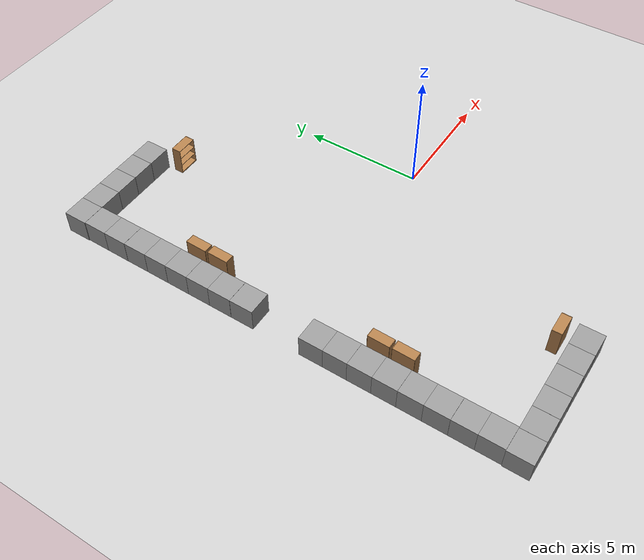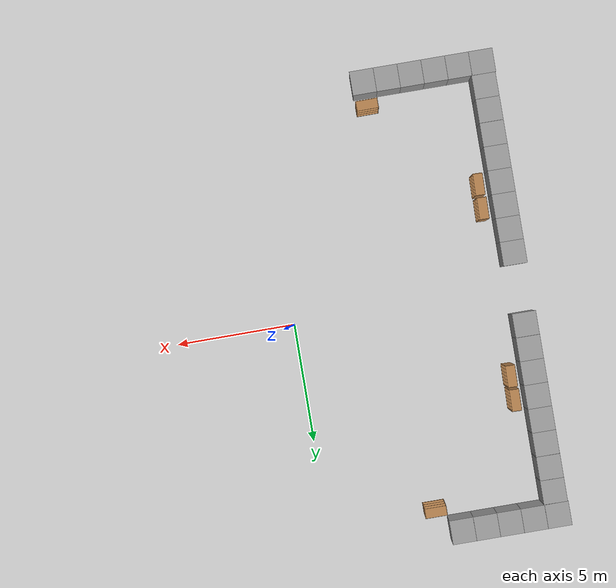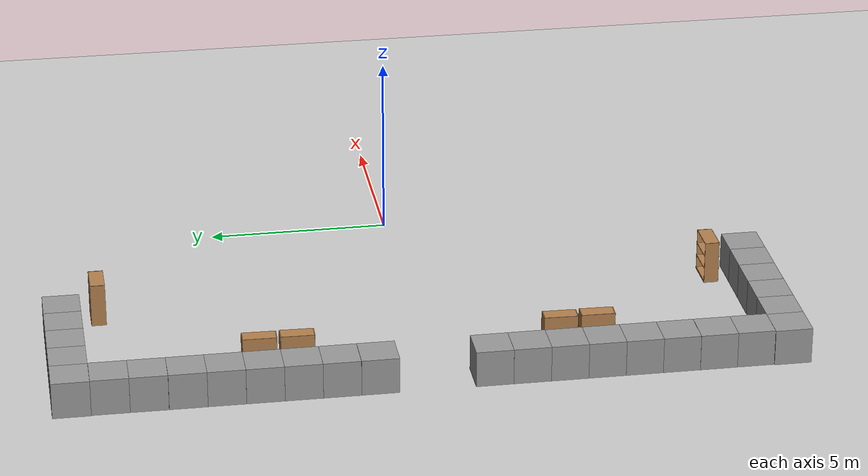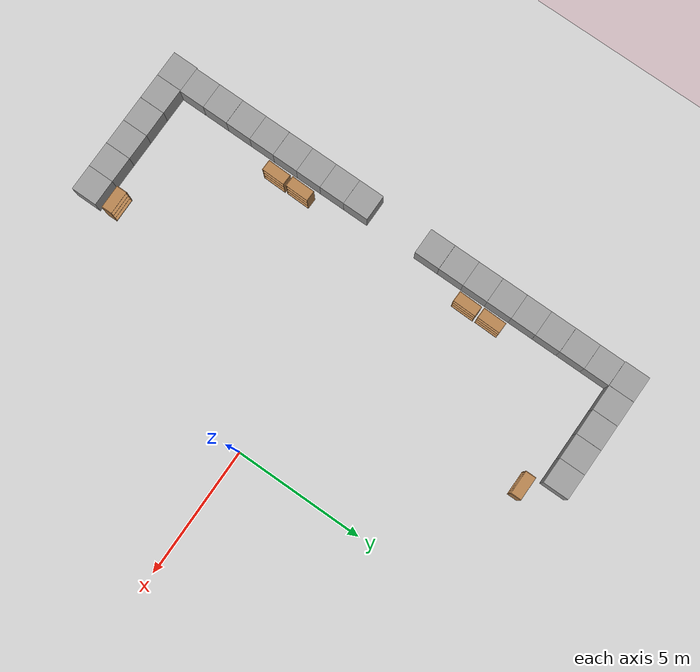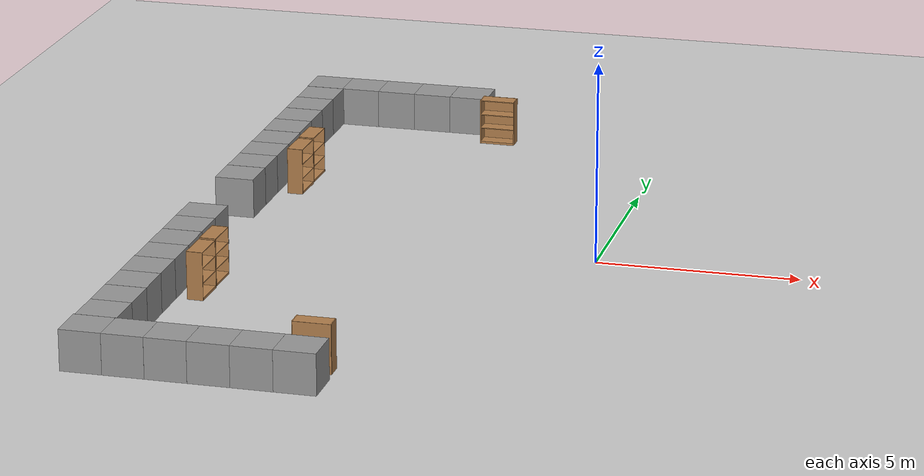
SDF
<sdf version="1.6">
 <world name="default">
  <model name="ground_plane">
   <static>1</static>
   <link name="link">
    <collision name="collision">
     <geometry><plane><normal>0 0 1</normal><size>100 100</size></plane></geometry>
     <surface><friction><ode><mu>100</mu><mu2>50</mu2></ode></friction></surface>
    </collision>
    <visual name="visual">
     <cast_shadows>0</cast_shadows>
     <geometry><plane><normal>0 0 1</normal><size>100 100</size></plane></geometry>
     <material>
      <script><uri>file://media/materials/scripts/gazebo.material</uri><name>Gazebo/Grey</name></script>
     </material>
    </visual>
   </link>
  </model>
  <model name="unit_box_2">
   <pose>-9.56901 -9.47844 0.499798 -0.000404 1e-06 0.000136</pose>
   <link name="link">
    <inertial>
     <mass>1</mass>
     <inertia>
      <ixx>0.166667</ixx>
      <ixy>0</ixy>
      <ixz>0</ixz>
      <iyy>0.166667</iyy>
      <iyz>0</iyz>
      <izz>0.166667</izz>
     </inertia>
    </inertial>
    <collision name="collision"><geometry><box><size>1 1 1</size></box></geometry></collision>
    <visual name="visual">
     <geometry><box><size>1 1 1</size></box></geometry>
     <material>
      <script><name>Gazebo/Grey</name><uri>file://media/materials/scripts/gazebo.material</uri></script>
     </material>
    </visual>
   </link>
  </model>
  <model name="unit_box_3">
   <pose>-9.55233 9.54711 0.5 0 -0 0.000678</pose>
   <link name="link">
    <inertial>
     <mass>1</mass>
     <inertia>
      <ixx>0.166667</ixx>
      <ixy>0</ixy>
      <ixz>0</ixz>
      <iyy>0.166667</iyy>
      <iyz>0</iyz>
      <izz>0.166667</izz>
     </inertia>
    </inertial>
    <collision name="collision"><geometry><box><size>1 1 1</size></box></geometry></collision>
    <visual name="visual">
     <geometry><box><size>1 1 1</size></box></geometry>
     <material>
      <script><name>Gazebo/Grey</name><uri>file://media/materials/scripts/gazebo.material</uri></script>
     </material>
    </visual>
   </link>
  </model>
  <model name="unit_box_28">
   <pose>-8.5686 -9.47816 0.499798 -0.000404 1e-06 0.00016</pose>
   <link name="link">
    <inertial>
     <mass>1</mass>
     <inertia>
      <ixx>0.166667</ixx>
      <ixy>0</ixy>
      <ixz>0</ixz>
      <iyy>0.166667</iyy>
      <iyz>0</iyz>
      <izz>0.166667</izz>
     </inertia>
    </inertial>
    <collision name="collision"><geometry><box><size>1 1 1</size></box></geometry></collision>
    <visual name="visual">
     <geometry><box><size>1 1 1</size></box></geometry>
     <material>
      <script><name>Gazebo/Grey</name><uri>file://media/materials/scripts/gazebo.material</uri></script>
     </material>
    </visual>
   </link>
  </model>
  <model name="unit_box_29">
   <pose>-7.56783 -9.47849 0.499798 -0.000404 1e-06 -2.2e-05</pose>
   <link name="link">
    <inertial>
     <mass>1</mass>
     <inertia>
      <ixx>0.166667</ixx>
      <ixy>0</ixy>
      <ixz>0</ixz>
      <iyy>0.166667</iyy>
      <iyz>0</iyz>
      <izz>0.166667</izz>
     </inertia>
    </inertial>
    <collision name="collision"><geometry><box><size>1 1 1</size></box></geometry></collision>
    <visual name="visual">
     <geometry><box><size>1 1 1</size></box></geometry>
     <material>
      <script><name>Gazebo/Grey</name><uri>file://media/materials/scripts/gazebo.material</uri></script>
     </material>
    </visual>
   </link>
  </model>
  <model name="unit_box_30">
   <pose>-6.56772 -9.47755 0.499798 -0.000404 1e-06 -1.9e-05</pose>
   <link name="link">
    <inertial>
     <mass>1</mass>
     <inertia>
      <ixx>0.166667</ixx>
      <ixy>0</ixy>
      <ixz>0</ixz>
      <iyy>0.166667</iyy>
      <iyz>0</iyz>
      <izz>0.166667</izz>
     </inertia>
    </inertial>
    <collision name="collision"><geometry><box><size>1 1 1</size></box></geometry></collision>
    <visual name="visual">
     <geometry><box><size>1 1 1</size></box></geometry>
     <material>
      <script><name>Gazebo/Grey</name><uri>file://media/materials/scripts/gazebo.material</uri></script>
     </material>
    </visual>
   </link>
  </model>
  <model name="unit_box_31">
   <pose>-5.5675 -9.47895 0.499798 -0.000404 -0 -0.000171</pose>
   <link name="link">
    <inertial>
     <mass>1</mass>
     <inertia>
      <ixx>0.166667</ixx>
      <ixy>0</ixy>
      <ixz>0</ixz>
      <iyy>0.166667</iyy>
      <iyz>0</iyz>
      <izz>0.166667</izz>
     </inertia>
    </inertial>
    <collision name="collision"><geometry><box><size>1 1 1</size></box></geometry></collision>
    <visual name="visual">
     <geometry><box><size>1 1 1</size></box></geometry>
     <material>
      <script><name>Gazebo/Grey</name><uri>file://media/materials/scripts/gazebo.material</uri></script>
     </material>
    </visual>
   </link>
  </model>
  <model name="unit_box_32">
   <pose>-4.56729 -9.47932 0.499798 -0.000404 0 -0.000396</pose>
   <link name="link">
    <inertial>
     <mass>1</mass>
     <inertia>
      <ixx>0.166667</ixx>
      <ixy>0</ixy>
      <ixz>0</ixz>
      <iyy>0.166667</iyy>
      <iyz>0</iyz>
      <izz>0.166667</izz>
     </inertia>
    </inertial>
    <collision name="collision"><geometry><box><size>1 1 1</size></box></geometry></collision>
    <visual name="visual">
     <geometry><box><size>1 1 1</size></box></geometry>
     <material>
      <script><name>Gazebo/Grey</name><uri>file://media/materials/scripts/gazebo.material</uri></script>
     </material>
    </visual>
   </link>
  </model>
  <model name="unit_box_36_0">
   <pose>-9.53234 8.54458 0.49902 0 0 -0.003755</pose>
   <link name="link">
    <inertial>
     <mass>1</mass>
     <inertia>
      <ixx>0.166667</ixx>
      <ixy>0</ixy>
      <ixz>0</ixz>
      <iyy>0.166667</iyy>
      <iyz>0</iyz>
      <izz>0.166667</izz>
     </inertia>
    </inertial>
    <collision name="collision"><geometry><box><size>1 1 1</size></box></geometry></collision>
    <visual name="visual">
     <geometry><box><size>1 1 1</size></box></geometry>
     <material>
      <script><name>Gazebo/Grey</name><uri>file://media/materials/scripts/gazebo.material</uri></script>
     </material>
    </visual>
   </link>
  </model>
  <model name="unit_box_36_1">
   <pose>-9.53581 7.54426 0.499798 0.000404 -0 -0.003707</pose>
   <link name="link">
    <inertial>
     <mass>1</mass>
     <inertia>
      <ixx>0.166667</ixx>
      <ixy>0</ixy>
      <ixz>0</ixz>
      <iyy>0.166667</iyy>
      <iyz>0</iyz>
      <izz>0.166667</izz>
     </inertia>
    </inertial>
    <collision name="collision"><geometry><box><size>1 1 1</size></box></geometry></collision>
    <visual name="visual">
     <geometry><box><size>1 1 1</size></box></geometry>
     <material>
      <script><name>Gazebo/Grey</name><uri>file://media/materials/scripts/gazebo.material</uri></script>
     </material>
    </visual>
   </link>
  </model>
  <model name="unit_box_36_2">
   <pose>-9.53516 6.54264 0.49912 0 0 -0.001231</pose>
   <link name="link">
    <inertial>
     <mass>1</mass>
     <inertia>
      <ixx>0.166667</ixx>
      <ixy>0</ixy>
      <ixz>0</ixz>
      <iyy>0.166667</iyy>
      <iyz>0</iyz>
      <izz>0.166667</izz>
     </inertia>
    </inertial>
    <collision name="collision"><geometry><box><size>1 1 1</size></box></geometry></collision>
    <visual name="visual">
     <geometry><box><size>1 1 1</size></box></geometry>
     <material>
      <script><name>Gazebo/Grey</name><uri>file://media/materials/scripts/gazebo.material</uri></script>
     </material>
    </visual>
   </link>
  </model>
  <model name="unit_box_36_3">
   <pose>-9.53613 5.54258 0.5 0 0 -0.001269</pose>
   <link name="link">
    <inertial>
     <mass>1</mass>
     <inertia>
      <ixx>0.166667</ixx>
      <ixy>0</ixy>
      <ixz>0</ixz>
      <iyy>0.166667</iyy>
      <iyz>0</iyz>
      <izz>0.166667</izz>
     </inertia>
    </inertial>
    <collision name="collision"><geometry><box><size>1 1 1</size></box></geometry></collision>
    <visual name="visual">
     <geometry><box><size>1 1 1</size></box></geometry>
     <material>
      <script><name>Gazebo/Grey</name><uri>file://media/materials/scripts/gazebo.material</uri></script>
     </material>
    </visual>
   </link>
  </model>
  <model name="unit_box_36_4">
   <pose>-9.53636 4.54198 0.49907 0 -0.0001 -0.000293</pose>
   <link name="link">
    <inertial>
     <mass>1</mass>
     <inertia>
      <ixx>0.166667</ixx>
      <ixy>0</ixy>
      <ixz>0</ixz>
      <iyy>0.166667</iyy>
      <iyz>0</iyz>
      <izz>0.166667</izz>
     </inertia>
    </inertial>
    <collision name="collision"><geometry><box><size>1 1 1</size></box></geometry></collision>
    <visual name="visual">
     <geometry><box><size>1 1 1</size></box></geometry>
     <material>
      <script><name>Gazebo/Grey</name><uri>file://media/materials/scripts/gazebo.material</uri></script>
     </material>
    </visual>
   </link>
  </model>
  <model name="unit_box_36_5">
   <pose>-9.53595 3.54159 0.49907 0 -0.0001 -0.000429</pose>
   <link name="link">
    <inertial>
     <mass>1</mass>
     <inertia>
      <ixx>0.166667</ixx>
      <ixy>0</ixy>
      <ixz>0</ixz>
      <iyy>0.166667</iyy>
      <iyz>0</iyz>
      <izz>0.166667</izz>
     </inertia>
    </inertial>
    <collision name="collision"><geometry><box><size>1 1 1</size></box></geometry></collision>
    <visual name="visual">
     <geometry><box><size>1 1 1</size></box></geometry>
     <material>
      <script><name>Gazebo/Grey</name><uri>file://media/materials/scripts/gazebo.material</uri></script>
     </material>
    </visual>
   </link>
  </model>
  <model name="unit_box_36_6">
   <pose>-9.53744 2.54151 0.49912 0 0 -0.000433</pose>
   <link name="link">
    <inertial>
     <mass>1</mass>
     <inertia>
      <ixx>0.166667</ixx>
      <ixy>0</ixy>
      <ixz>0</ixz>
      <iyy>0.166667</iyy>
      <iyz>0</iyz>
      <izz>0.166667</izz>
     </inertia>
    </inertial>
    <collision name="collision"><geometry><box><size>1 1 1</size></box></geometry></collision>
    <visual name="visual">
     <geometry><box><size>1 1 1</size></box></geometry>
     <material>
      <script><name>Gazebo/Grey</name><uri>file://media/materials/scripts/gazebo.material</uri></script>
     </material>
    </visual>
   </link>
  </model>
  <model name="unit_box_36_7">
   <pose>-9.53709 1.53766 0.499798 -0.000404 1e-06 -5e-06</pose>
   <link name="link">
    <inertial>
     <mass>1</mass>
     <inertia>
      <ixx>0.166667</ixx>
      <ixy>0</ixy>
      <ixz>0</ixz>
      <iyy>0.166667</iyy>
      <iyz>0</iyz>
      <izz>0.166667</izz>
     </inertia>
    </inertial>
    <collision name="collision"><geometry><box><size>1 1 1</size></box></geometry></collision>
    <visual name="visual">
     <geometry><box><size>1 1 1</size></box></geometry>
     <material>
      <script><name>Gazebo/Grey</name><uri>file://media/materials/scripts/gazebo.material</uri></script>
     </material>
    </visual>
   </link>
  </model>
  <model name="unit_box_36_8">
   <pose>-9.53766 -1.47325 0.49912 0 0 -0.00043</pose>
   <link name="link">
    <inertial>
     <mass>1</mass>
     <inertia>
      <ixx>0.166667</ixx>
      <ixy>0</ixy>
      <ixz>0</ixz>
      <iyy>0.166667</iyy>
      <iyz>0</iyz>
      <izz>0.166667</izz>
     </inertia>
    </inertial>
    <collision name="collision"><geometry><box><size>1 1 1</size></box></geometry></collision>
    <visual name="visual">
     <geometry><box><size>1 1 1</size></box></geometry>
     <material>
      <script><name>Gazebo/Grey</name><uri>file://media/materials/scripts/gazebo.material</uri></script>
     </material>
    </visual>
   </link>
  </model>
  <model name="unit_box_36_9">
   <pose>-9.53797 -2.47368 0.5 0 0 -9.7e-05</pose>
   <link name="link">
    <inertial>
     <mass>1</mass>
     <inertia>
      <ixx>0.166667</ixx>
      <ixy>0</ixy>
      <ixz>0</ixz>
      <iyy>0.166667</iyy>
      <iyz>0</iyz>
      <izz>0.166667</izz>
     </inertia>
    </inertial>
    <collision name="collision"><geometry><box><size>1 1 1</size></box></geometry></collision>
    <visual name="visual">
     <geometry><box><size>1 1 1</size></box></geometry>
     <material>
      <script><name>Gazebo/Grey</name><uri>file://media/materials/scripts/gazebo.material</uri></script>
     </material>
    </visual>
   </link>
  </model>
  <model name="unit_box_36_10">
   <pose>-9.53735 -3.47376 0.49912 0 0 -5e-05</pose>
   <link name="link">
    <inertial>
     <mass>1</mass>
     <inertia>
      <ixx>0.166667</ixx>
      <ixy>0</ixy>
      <ixz>0</ixz>
      <iyy>0.166667</iyy>
      <iyz>0</iyz>
      <izz>0.166667</izz>
     </inertia>
    </inertial>
    <collision name="collision"><geometry><box><size>1 1 1</size></box></geometry></collision>
    <visual name="visual">
     <geometry><box><size>1 1 1</size></box></geometry>
     <material>
      <script><name>Gazebo/Grey</name><uri>file://media/materials/scripts/gazebo.material</uri></script>
     </material>
    </visual>
   </link>
  </model>
  <model name="unit_box_36_11">
   <pose>-9.53788 -4.47381 0.5 0 0 -3.4e-05</pose>
   <link name="link">
    <inertial>
     <mass>1</mass>
     <inertia>
      <ixx>0.166667</ixx>
      <ixy>0</ixy>
      <ixz>0</ixz>
      <iyy>0.166667</iyy>
      <iyz>0</iyz>
      <izz>0.166667</izz>
     </inertia>
    </inertial>
    <collision name="collision"><geometry><box><size>1 1 1</size></box></geometry></collision>
    <visual name="visual">
     <geometry><box><size>1 1 1</size></box></geometry>
     <material>
      <script><name>Gazebo/Grey</name><uri>file://media/materials/scripts/gazebo.material</uri></script>
     </material>
    </visual>
   </link>
  </model>
  <model name="unit_box_36_12">
   <pose>-9.53807 -5.47425 0.49967 0.00066 -0 -3.4e-05</pose>
   <link name="link">
    <inertial>
     <mass>1</mass>
     <inertia>
      <ixx>0.166667</ixx>
      <ixy>0</ixy>
      <ixz>0</ixz>
      <iyy>0.166667</iyy>
      <iyz>0</iyz>
      <izz>0.166667</izz>
     </inertia>
    </inertial>
    <collision name="collision"><geometry><box><size>1 1 1</size></box></geometry></collision>
    <visual name="visual">
     <geometry><box><size>1 1 1</size></box></geometry>
     <material>
      <script><name>Gazebo/Grey</name><uri>file://media/materials/scripts/gazebo.material</uri></script>
     </material>
    </visual>
   </link>
  </model>
  <model name="unit_box_36_13">
   <pose>-9.53751 -6.47432 0.49902 0 -0 0.000369</pose>
   <link name="link">
    <inertial>
     <mass>1</mass>
     <inertia>
      <ixx>0.166667</ixx>
      <ixy>0</ixy>
      <ixz>0</ixz>
      <iyy>0.166667</iyy>
      <iyz>0</iyz>
      <izz>0.166667</izz>
     </inertia>
    </inertial>
    <collision name="collision"><geometry><box><size>1 1 1</size></box></geometry></collision>
    <visual name="visual">
     <geometry><box><size>1 1 1</size></box></geometry>
     <material>
      <script><name>Gazebo/Grey</name><uri>file://media/materials/scripts/gazebo.material</uri></script>
     </material>
    </visual>
   </link>
  </model>
  <model name="unit_box_36_14">
   <pose>-9.5384 -7.47673 0.49907 0 0.0001 -0.001197</pose>
   <link name="link">
    <inertial>
     <mass>1</mass>
     <inertia>
      <ixx>0.166667</ixx>
      <ixy>0</ixy>
      <ixz>0</ixz>
      <iyy>0.166667</iyy>
      <iyz>0</iyz>
      <izz>0.166667</izz>
     </inertia>
    </inertial>
    <collision name="collision"><geometry><box><size>1 1 1</size></box></geometry></collision>
    <visual name="visual">
     <geometry><box><size>1 1 1</size></box></geometry>
     <material>
      <script><name>Gazebo/Grey</name><uri>file://media/materials/scripts/gazebo.material</uri></script>
     </material>
    </visual>
   </link>
  </model>
  <model name="unit_box_36_15">
   <pose>-9.5372 -8.47686 0.49967 0 0.00066 -0.00099</pose>
   <link name="link">
    <inertial>
     <mass>1</mass>
     <inertia>
      <ixx>0.166667</ixx>
      <ixy>0</ixy>
      <ixz>0</ixz>
      <iyy>0.166667</iyy>
      <iyz>0</iyz>
      <izz>0.166667</izz>
     </inertia>
    </inertial>
    <collision name="collision"><geometry><box><size>1 1 1</size></box></geometry></collision>
    <visual name="visual">
     <geometry><box><size>1 1 1</size></box></geometry>
     <material>
      <script><name>Gazebo/Grey</name><uri>file://media/materials/scripts/gazebo.material</uri></script>
     </material>
    </visual>
   </link>
  </model>
  <model name="unit_box_36_16">
   <pose>-8.55202 9.54815 0.499798 -0.000404 1e-06 0.000638</pose>
   <link name="link">
    <inertial>
     <mass>1</mass>
     <inertia>
      <ixx>0.166667</ixx>
      <ixy>0</ixy>
      <ixz>0</ixz>
      <iyy>0.166667</iyy>
      <iyz>0</iyz>
      <izz>0.166667</izz>
     </inertia>
    </inertial>
    <collision name="collision"><geometry><box><size>1 1 1</size></box></geometry></collision>
    <visual name="visual">
     <geometry><box><size>1 1 1</size></box></geometry>
     <material>
      <script><name>Gazebo/Grey</name><uri>file://media/materials/scripts/gazebo.material</uri></script>
     </material>
    </visual>
   </link>
  </model>
  <model name="unit_box_36_17">
   <pose>-7.5519 9.54801 0.499798 -0.000404 1e-06 0.000451</pose>
   <link name="link">
    <inertial>
     <mass>1</mass>
     <inertia>
      <ixx>0.166667</ixx>
      <ixy>0</ixy>
      <ixz>0</ixz>
      <iyy>0.166667</iyy>
      <iyz>0</iyz>
      <izz>0.166667</izz>
     </inertia>
    </inertial>
    <collision name="collision"><geometry><box><size>1 1 1</size></box></geometry></collision>
    <visual name="visual">
     <geometry><box><size>1 1 1</size></box></geometry>
     <material>
      <script><name>Gazebo/Grey</name><uri>file://media/materials/scripts/gazebo.material</uri></script>
     </material>
    </visual>
   </link>
  </model>
  <model name="unit_box_36_18">
   <pose>-6.55181 9.54751 0.499798 -0.000404 1e-06 0.000536</pose>
   <link name="link">
    <inertial>
     <mass>1</mass>
     <inertia>
      <ixx>0.166667</ixx>
      <ixy>0</ixy>
      <ixz>0</ixz>
      <iyy>0.166667</iyy>
      <iyz>0</iyz>
      <izz>0.166667</izz>
     </inertia>
    </inertial>
    <collision name="collision"><geometry><box><size>1 1 1</size></box></geometry></collision>
    <visual name="visual">
     <geometry><box><size>1 1 1</size></box></geometry>
     <material>
      <script><name>Gazebo/Grey</name><uri>file://media/materials/scripts/gazebo.material</uri></script>
     </material>
    </visual>
   </link>
  </model>
  <model name="unit_box_36_19">
   <pose>-5.55133 9.54722 0.499798 -0.000404 1e-06 0.000443</pose>
   <link name="link">
    <inertial>
     <mass>1</mass>
     <inertia>
      <ixx>0.166667</ixx>
      <ixy>0</ixy>
      <ixz>0</ixz>
      <iyy>0.166667</iyy>
      <iyz>0</iyz>
      <izz>0.166667</izz>
     </inertia>
    </inertial>
    <collision name="collision"><geometry><box><size>1 1 1</size></box></geometry></collision>
    <visual name="visual">
     <geometry><box><size>1 1 1</size></box></geometry>
     <material>
      <script><name>Gazebo/Grey</name><uri>file://media/materials/scripts/gazebo.material</uri></script>
     </material>
    </visual>
   </link>
  </model>
  <model name="bookshelf_5">
   <static>1</static>
   <link name="link">
    <inertial><mass>1</mass></inertial>
    <collision name="back">
     <pose>0 0.005 0.6 0 -0 0</pose>
     <geometry><box><size>0.9 0.01 1.2</size></box></geometry>
    </collision>
    <visual name="visual1">
     <pose>0 0.005 0.6 0 -0 0</pose>
     <geometry><box><size>0.9 0.01 1.2</size></box></geometry>
     <material>
      <script><uri>file://media/materials/scripts/gazebo.material</uri><name>Gazebo/Wood</name></script>
     </material>
    </visual>
    <collision name="left_side">
     <pose>0.45 -0.195 0.6 0 -0 0</pose>
     <geometry><box><size>0.02 0.4 1.2</size></box></geometry>
    </collision>
    <visual name="visual2">
     <pose>0.45 -0.195 0.6 0 -0 0</pose>
     <geometry><box><size>0.02 0.4 1.2</size></box></geometry>
     <material>
      <script><uri>file://media/materials/scripts/gazebo.material</uri><name>Gazebo/Wood</name></script>
     </material>
    </visual>
    <collision name="right_side">
     <pose>-0.45 -0.195 0.6 0 -0 0</pose>
     <geometry><box><size>0.02 0.4 1.2</size></box></geometry>
    </collision>
    <visual name="visual3">
     <pose>-0.45 -0.195 0.6 0 -0 0</pose>
     <geometry><box><size>0.02 0.4 1.2</size></box></geometry>
     <material>
      <script><uri>file://media/materials/scripts/gazebo.material</uri><name>Gazebo/Wood</name></script>
     </material>
    </visual>
    <collision name="bottom">
     <pose>0 -0.195 0.03 0 -0 0</pose>
     <geometry><box><size>0.88 0.4 0.06</size></box></geometry>
    </collision>
    <visual name="visual4">
     <pose>0 -0.195 0.03 0 -0 0</pose>
     <geometry><box><size>0.88 0.4 0.06</size></box></geometry>
     <material>
      <script><uri>file://media/materials/scripts/gazebo.material</uri><name>Gazebo/Wood</name></script>
     </material>
    </visual>
    <collision name="top">
     <pose>0 -0.195 1.19 0 -0 0</pose>
     <geometry><box><size>0.88 0.4 0.02</size></box></geometry>
    </collision>
    <visual name="visual5">
     <pose>0 -0.195 1.19 0 -0 0</pose>
     <geometry><box><size>0.88 0.4 0.02</size></box></geometry>
     <material>
      <script><uri>file://media/materials/scripts/gazebo.material</uri><name>Gazebo/Wood</name></script>
     </material>
    </visual>
    <collision name="low_shelf">
     <pose>0 -0.195 0.43 0 -0 0</pose>
     <geometry><box><size>0.88 0.4 0.02</size></box></geometry>
    </collision>
    <visual name="visual6">
     <pose>0 -0.195 0.43 0 -0 0</pose>
     <geometry><box><size>0.88 0.4 0.02</size></box></geometry>
     <material>
      <script><uri>file://media/materials/scripts/gazebo.material</uri><name>Gazebo/Wood</name></script>
     </material>
    </visual>
    <collision name="high_shelf">
     <pose>0 -0.195 0.8 0 -0 0</pose>
     <geometry><box><size>0.88 0.4 0.02</size></box></geometry>
    </collision>
    <visual name="visual7">
     <pose>0 -0.195 0.8 0 -0 0</pose>
     <geometry><box><size>0.88 0.4 0.02</size></box></geometry>
     <material>
      <script><uri>file://media/materials/scripts/gazebo.material</uri><name>Gazebo/Wood</name></script>
     </material>
    </visual>
   </link>
   <pose>-4.56719 8.73709 0 0 -0 0</pose>
  </model>
  <model name="bookshelf">
   <static>1</static>
   <link name="link">
    <inertial><mass>1</mass></inertial>
    <collision name="back">
     <pose>0 0.005 0.6 0 -0 0</pose>
     <geometry><box><size>0.9 0.01 1.2</size></box></geometry>
    </collision>
    <visual name="visual1">
     <pose>0 0.005 0.6 0 -0 0</pose>
     <geometry><box><size>0.9 0.01 1.2</size></box></geometry>
     <material>
      <script><uri>file://media/materials/scripts/gazebo.material</uri><name>Gazebo/Wood</name></script>
     </material>
    </visual>
    <collision name="left_side">
     <pose>0.45 -0.195 0.6 0 -0 0</pose>
     <geometry><box><size>0.02 0.4 1.2</size></box></geometry>
    </collision>
    <visual name="visual2">
     <pose>0.45 -0.195 0.6 0 -0 0</pose>
     <geometry><box><size>0.02 0.4 1.2</size></box></geometry>
     <material>
      <script><uri>file://media/materials/scripts/gazebo.material</uri><name>Gazebo/Wood</name></script>
     </material>
    </visual>
    <collision name="right_side">
     <pose>-0.45 -0.195 0.6 0 -0 0</pose>
     <geometry><box><size>0.02 0.4 1.2</size></box></geometry>
    </collision>
    <visual name="visual3">
     <pose>-0.45 -0.195 0.6 0 -0 0</pose>
     <geometry><box><size>0.02 0.4 1.2</size></box></geometry>
     <material>
      <script><uri>file://media/materials/scripts/gazebo.material</uri><name>Gazebo/Wood</name></script>
     </material>
    </visual>
    <collision name="bottom">
     <pose>0 -0.195 0.03 0 -0 0</pose>
     <geometry><box><size>0.88 0.4 0.06</size></box></geometry>
    </collision>
    <visual name="visual4">
     <pose>0 -0.195 0.03 0 -0 0</pose>
     <geometry><box><size>0.88 0.4 0.06</size></box></geometry>
     <material>
      <script><uri>file://media/materials/scripts/gazebo.material</uri><name>Gazebo/Wood</name></script>
     </material>
    </visual>
    <collision name="top">
     <pose>0 -0.195 1.19 0 -0 0</pose>
     <geometry><box><size>0.88 0.4 0.02</size></box></geometry>
    </collision>
    <visual name="visual5">
     <pose>0 -0.195 1.19 0 -0 0</pose>
     <geometry><box><size>0.88 0.4 0.02</size></box></geometry>
     <material>
      <script><uri>file://media/materials/scripts/gazebo.material</uri><name>Gazebo/Wood</name></script>
     </material>
    </visual>
    <collision name="low_shelf">
     <pose>0 -0.195 0.43 0 -0 0</pose>
     <geometry><box><size>0.88 0.4 0.02</size></box></geometry>
    </collision>
    <visual name="visual6">
     <pose>0 -0.195 0.43 0 -0 0</pose>
     <geometry><box><size>0.88 0.4 0.02</size></box></geometry>
     <material>
      <script><uri>file://media/materials/scripts/gazebo.material</uri><name>Gazebo/Wood</name></script>
     </material>
    </visual>
    <collision name="high_shelf">
     <pose>0 -0.195 0.8 0 -0 0</pose>
     <geometry><box><size>0.88 0.4 0.02</size></box></geometry>
    </collision>
    <visual name="visual7">
     <pose>0 -0.195 0.8 0 -0 0</pose>
     <geometry><box><size>0.88 0.4 0.02</size></box></geometry>
     <material>
      <script><uri>file://media/materials/scripts/gazebo.material</uri><name>Gazebo/Wood</name></script>
     </material>
    </visual>
   </link>
   <pose>-8.7611 3.54571 0 0 -0 1.55</pose>
  </model>
  <model name="bookshelf_clone">
   <static>1</static>
   <link name="link">
    <inertial><mass>1</mass></inertial>
    <collision name="back">
     <pose>0 0.005 0.6 0 -0 0</pose>
     <geometry><box><size>0.9 0.01 1.2</size></box></geometry>
    </collision>
    <visual name="visual1">
     <pose>0 0.005 0.6 0 -0 0</pose>
     <geometry><box><size>0.9 0.01 1.2</size></box></geometry>
     <material>
      <script><uri>file://media/materials/scripts/gazebo.material</uri><name>Gazebo/Wood</name></script>
     </material>
    </visual>
    <collision name="left_side">
     <pose>0.45 -0.195 0.6 0 -0 0</pose>
     <geometry><box><size>0.02 0.4 1.2</size></box></geometry>
    </collision>
    <visual name="visual2">
     <pose>0.45 -0.195 0.6 0 -0 0</pose>
     <geometry><box><size>0.02 0.4 1.2</size></box></geometry>
     <material>
      <script><uri>file://media/materials/scripts/gazebo.material</uri><name>Gazebo/Wood</name></script>
     </material>
    </visual>
    <collision name="right_side">
     <pose>-0.45 -0.195 0.6 0 -0 0</pose>
     <geometry><box><size>0.02 0.4 1.2</size></box></geometry>
    </collision>
    <visual name="visual3">
     <pose>-0.45 -0.195 0.6 0 -0 0</pose>
     <geometry><box><size>0.02 0.4 1.2</size></box></geometry>
     <material>
      <script><uri>file://media/materials/scripts/gazebo.material</uri><name>Gazebo/Wood</name></script>
     </material>
    </visual>
    <collision name="bottom">
     <pose>0 -0.195 0.03 0 -0 0</pose>
     <geometry><box><size>0.88 0.4 0.06</size></box></geometry>
    </collision>
    <visual name="visual4">
     <pose>0 -0.195 0.03 0 -0 0</pose>
     <geometry><box><size>0.88 0.4 0.06</size></box></geometry>
     <material>
      <script><uri>file://media/materials/scripts/gazebo.material</uri><name>Gazebo/Wood</name></script>
     </material>
    </visual>
    <collision name="top">
     <pose>0 -0.195 1.19 0 -0 0</pose>
     <geometry><box><size>0.88 0.4 0.02</size></box></geometry>
    </collision>
    <visual name="visual5">
     <pose>0 -0.195 1.19 0 -0 0</pose>
     <geometry><box><size>0.88 0.4 0.02</size></box></geometry>
     <material>
      <script><uri>file://media/materials/scripts/gazebo.material</uri><name>Gazebo/Wood</name></script>
     </material>
    </visual>
    <collision name="low_shelf">
     <pose>0 -0.195 0.43 0 -0 0</pose>
     <geometry><box><size>0.88 0.4 0.02</size></box></geometry>
    </collision>
    <visual name="visual6">
     <pose>0 -0.195 0.43 0 -0 0</pose>
     <geometry><box><size>0.88 0.4 0.02</size></box></geometry>
     <material>
      <script><uri>file://media/materials/scripts/gazebo.material</uri><name>Gazebo/Wood</name></script>
     </material>
    </visual>
    <collision name="high_shelf">
     <pose>0 -0.195 0.8 0 -0 0</pose>
     <geometry><box><size>0.88 0.4 0.02</size></box></geometry>
    </collision>
    <visual name="visual7">
     <pose>0 -0.195 0.8 0 -0 0</pose>
     <geometry><box><size>0.88 0.4 0.02</size></box></geometry>
     <material>
      <script><uri>file://media/materials/scripts/gazebo.material</uri><name>Gazebo/Wood</name></script>
     </material>
    </visual>
   </link>
   <pose>-8.7611 4.54599 0 0 -0 1.55</pose>
  </model>
  <model name="bookshelf_clone_0">
   <static>1</static>
   <link name="link">
    <inertial><mass>1</mass></inertial>
    <collision name="back">
     <pose>0 0.005 0.6 0 -0 0</pose>
     <geometry><box><size>0.9 0.01 1.2</size></box></geometry>
    </collision>
    <visual name="visual1">
     <pose>0 0.005 0.6 0 -0 0</pose>
     <geometry><box><size>0.9 0.01 1.2</size></box></geometry>
     <material>
      <script><uri>file://media/materials/scripts/gazebo.material</uri><name>Gazebo/Wood</name></script>
     </material>
    </visual>
    <collision name="left_side">
     <pose>0.45 -0.195 0.6 0 -0 0</pose>
     <geometry><box><size>0.02 0.4 1.2</size></box></geometry>
    </collision>
    <visual name="visual2">
     <pose>0.45 -0.195 0.6 0 -0 0</pose>
     <geometry><box><size>0.02 0.4 1.2</size></box></geometry>
     <material>
      <script><uri>file://media/materials/scripts/gazebo.material</uri><name>Gazebo/Wood</name></script>
     </material>
    </visual>
    <collision name="right_side">
     <pose>-0.45 -0.195 0.6 0 -0 0</pose>
     <geometry><box><size>0.02 0.4 1.2</size></box></geometry>
    </collision>
    <visual name="visual3">
     <pose>-0.45 -0.195 0.6 0 -0 0</pose>
     <geometry><box><size>0.02 0.4 1.2</size></box></geometry>
     <material>
      <script><uri>file://media/materials/scripts/gazebo.material</uri><name>Gazebo/Wood</name></script>
     </material>
    </visual>
    <collision name="bottom">
     <pose>0 -0.195 0.03 0 -0 0</pose>
     <geometry><box><size>0.88 0.4 0.06</size></box></geometry>
    </collision>
    <visual name="visual4">
     <pose>0 -0.195 0.03 0 -0 0</pose>
     <geometry><box><size>0.88 0.4 0.06</size></box></geometry>
     <material>
      <script><uri>file://media/materials/scripts/gazebo.material</uri><name>Gazebo/Wood</name></script>
     </material>
    </visual>
    <collision name="top">
     <pose>0 -0.195 1.19 0 -0 0</pose>
     <geometry><box><size>0.88 0.4 0.02</size></box></geometry>
    </collision>
    <visual name="visual5">
     <pose>0 -0.195 1.19 0 -0 0</pose>
     <geometry><box><size>0.88 0.4 0.02</size></box></geometry>
     <material>
      <script><uri>file://media/materials/scripts/gazebo.material</uri><name>Gazebo/Wood</name></script>
     </material>
    </visual>
    <collision name="low_shelf">
     <pose>0 -0.195 0.43 0 -0 0</pose>
     <geometry><box><size>0.88 0.4 0.02</size></box></geometry>
    </collision>
    <visual name="visual6">
     <pose>0 -0.195 0.43 0 -0 0</pose>
     <geometry><box><size>0.88 0.4 0.02</size></box></geometry>
     <material>
      <script><uri>file://media/materials/scripts/gazebo.material</uri><name>Gazebo/Wood</name></script>
     </material>
    </visual>
    <collision name="high_shelf">
     <pose>0 -0.195 0.8 0 -0 0</pose>
     <geometry><box><size>0.88 0.4 0.02</size></box></geometry>
    </collision>
    <visual name="visual7">
     <pose>0 -0.195 0.8 0 -0 0</pose>
     <geometry><box><size>0.88 0.4 0.02</size></box></geometry>
     <material>
      <script><uri>file://media/materials/scripts/gazebo.material</uri><name>Gazebo/Wood</name></script>
     </material>
    </visual>
   </link>
   <pose>-8.76111 -3.46975 0 0 -0 1.55</pose>
  </model>
  <model name="bookshelf_clone_1">
   <static>1</static>
   <link name="link">
    <inertial><mass>1</mass></inertial>
    <collision name="back">
     <pose>0 0.005 0.6 0 -0 0</pose>
     <geometry><box><size>0.9 0.01 1.2</size></box></geometry>
    </collision>
    <visual name="visual1">
     <pose>0 0.005 0.6 0 -0 0</pose>
     <geometry><box><size>0.9 0.01 1.2</size></box></geometry>
     <material>
      <script><uri>file://media/materials/scripts/gazebo.material</uri><name>Gazebo/Wood</name></script>
     </material>
    </visual>
    <collision name="left_side">
     <pose>0.45 -0.195 0.6 0 -0 0</pose>
     <geometry><box><size>0.02 0.4 1.2</size></box></geometry>
    </collision>
    <visual name="visual2">
     <pose>0.45 -0.195 0.6 0 -0 0</pose>
     <geometry><box><size>0.02 0.4 1.2</size></box></geometry>
     <material>
      <script><uri>file://media/materials/scripts/gazebo.material</uri><name>Gazebo/Wood</name></script>
     </material>
    </visual>
    <collision name="right_side">
     <pose>-0.45 -0.195 0.6 0 -0 0</pose>
     <geometry><box><size>0.02 0.4 1.2</size></box></geometry>
    </collision>
    <visual name="visual3">
     <pose>-0.45 -0.195 0.6 0 -0 0</pose>
     <geometry><box><size>0.02 0.4 1.2</size></box></geometry>
     <material>
      <script><uri>file://media/materials/scripts/gazebo.material</uri><name>Gazebo/Wood</name></script>
     </material>
    </visual>
    <collision name="bottom">
     <pose>0 -0.195 0.03 0 -0 0</pose>
     <geometry><box><size>0.88 0.4 0.06</size></box></geometry>
    </collision>
    <visual name="visual4">
     <pose>0 -0.195 0.03 0 -0 0</pose>
     <geometry><box><size>0.88 0.4 0.06</size></box></geometry>
     <material>
      <script><uri>file://media/materials/scripts/gazebo.material</uri><name>Gazebo/Wood</name></script>
     </material>
    </visual>
    <collision name="top">
     <pose>0 -0.195 1.19 0 -0 0</pose>
     <geometry><box><size>0.88 0.4 0.02</size></box></geometry>
    </collision>
    <visual name="visual5">
     <pose>0 -0.195 1.19 0 -0 0</pose>
     <geometry><box><size>0.88 0.4 0.02</size></box></geometry>
     <material>
      <script><uri>file://media/materials/scripts/gazebo.material</uri><name>Gazebo/Wood</name></script>
     </material>
    </visual>
    <collision name="low_shelf">
     <pose>0 -0.195 0.43 0 -0 0</pose>
     <geometry><box><size>0.88 0.4 0.02</size></box></geometry>
    </collision>
    <visual name="visual6">
     <pose>0 -0.195 0.43 0 -0 0</pose>
     <geometry><box><size>0.88 0.4 0.02</size></box></geometry>
     <material>
      <script><uri>file://media/materials/scripts/gazebo.material</uri><name>Gazebo/Wood</name></script>
     </material>
    </visual>
    <collision name="high_shelf">
     <pose>0 -0.195 0.8 0 -0 0</pose>
     <geometry><box><size>0.88 0.4 0.02</size></box></geometry>
    </collision>
    <visual name="visual7">
     <pose>0 -0.195 0.8 0 -0 0</pose>
     <geometry><box><size>0.88 0.4 0.02</size></box></geometry>
     <material>
      <script><uri>file://media/materials/scripts/gazebo.material</uri><name>Gazebo/Wood</name></script>
     </material>
    </visual>
   </link>
   <pose>-8.76111 -4.4698 0 0 -0 1.55</pose>
  </model>
  <model name="bookshelf_0_clone">
   <static>1</static>
   <link name="link">
    <inertial><mass>1</mass></inertial>
    <collision name="back">
     <pose>0 0.005 0.6 0 -0 0</pose>
     <geometry><box><size>0.9 0.01 1.2</size></box></geometry>
    </collision>
    <visual name="visual1">
     <pose>0 0.005 0.6 0 -0 0</pose>
     <geometry><box><size>0.9 0.01 1.2</size></box></geometry>
     <material>
      <script><uri>file://media/materials/scripts/gazebo.material</uri><name>Gazebo/Wood</name></script>
     </material>
    </visual>
    <collision name="left_side">
     <pose>0.45 -0.195 0.6 0 -0 0</pose>
     <geometry><box><size>0.02 0.4 1.2</size></box></geometry>
    </collision>
    <visual name="visual2">
     <pose>0.45 -0.195 0.6 0 -0 0</pose>
     <geometry><box><size>0.02 0.4 1.2</size></box></geometry>
     <material>
      <script><uri>file://media/materials/scripts/gazebo.material</uri><name>Gazebo/Wood</name></script>
     </material>
    </visual>
    <collision name="right_side">
     <pose>-0.45 -0.195 0.6 0 -0 0</pose>
     <geometry><box><size>0.02 0.4 1.2</size></box></geometry>
    </collision>
    <visual name="visual3">
     <pose>-0.45 -0.195 0.6 0 -0 0</pose>
     <geometry><box><size>0.02 0.4 1.2</size></box></geometry>
     <material>
      <script><uri>file://media/materials/scripts/gazebo.material</uri><name>Gazebo/Wood</name></script>
     </material>
    </visual>
    <collision name="bottom">
     <pose>0 -0.195 0.03 0 -0 0</pose>
     <geometry><box><size>0.88 0.4 0.06</size></box></geometry>
    </collision>
    <visual name="visual4">
     <pose>0 -0.195 0.03 0 -0 0</pose>
     <geometry><box><size>0.88 0.4 0.06</size></box></geometry>
     <material>
      <script><uri>file://media/materials/scripts/gazebo.material</uri><name>Gazebo/Wood</name></script>
     </material>
    </visual>
    <collision name="top">
     <pose>0 -0.195 1.19 0 -0 0</pose>
     <geometry><box><size>0.88 0.4 0.02</size></box></geometry>
    </collision>
    <visual name="visual5">
     <pose>0 -0.195 1.19 0 -0 0</pose>
     <geometry><box><size>0.88 0.4 0.02</size></box></geometry>
     <material>
      <script><uri>file://media/materials/scripts/gazebo.material</uri><name>Gazebo/Wood</name></script>
     </material>
    </visual>
    <collision name="low_shelf">
     <pose>0 -0.195 0.43 0 -0 0</pose>
     <geometry><box><size>0.88 0.4 0.02</size></box></geometry>
    </collision>
    <visual name="visual6">
     <pose>0 -0.195 0.43 0 -0 0</pose>
     <geometry><box><size>0.88 0.4 0.02</size></box></geometry>
     <material>
      <script><uri>file://media/materials/scripts/gazebo.material</uri><name>Gazebo/Wood</name></script>
     </material>
    </visual>
    <collision name="high_shelf">
     <pose>0 -0.195 0.8 0 -0 0</pose>
     <geometry><box><size>0.88 0.4 0.02</size></box></geometry>
    </collision>
    <visual name="visual7">
     <pose>0 -0.195 0.8 0 -0 0</pose>
     <geometry><box><size>0.88 0.4 0.02</size></box></geometry>
     <material>
      <script><uri>file://media/materials/scripts/gazebo.material</uri><name>Gazebo/Wood</name></script>
     </material>
    </visual>
   </link>
   <pose>-4.56557 -8.67621 0 0 0 -3.13319</pose>
  </model>
 </world>
</sdf>
